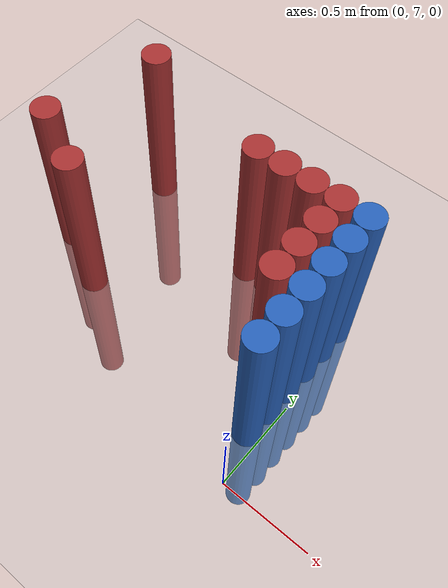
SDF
<sdf version="1.6">
 <world name="default">
  <model name="ground_plane">
   <static>1</static>
   <link name="link">
    <collision name="collision">
     <geometry><plane><normal>0 0 1</normal><size>100 100</size></plane></geometry>
     <surface><friction><ode><mu>100</mu><mu2>50</mu2></ode></friction></surface>
    </collision>
    <visual name="visual">
     <cast_shadows>0</cast_shadows>
     <geometry><plane><normal>0 0 1</normal><size>100 100</size></plane></geometry>
     <material>
      <script><uri>file://media/materials/scripts/gazebo.material</uri><name>Gazebo/Grey</name></script>
     </material>
    </visual>
   </link>
  </model>
  <model name="unit_cylinder_177">
   <static>1</static>
   <pose>-1.575000 7.575000 0.000000 0.000000 0.000000 0.000000</pose>
   <link name="link">
    <inertial>
     <mass>1</mass>
     <inertia><ixx>0.145833</ixx><ixy>0</ixy><ixz>0</ixz><iyy>0.145833</iyy><iyz>0</iyz><izz>0.125</izz></inertia>
    </inertial>
    <collision name="collision">
     <geometry><cylinder><radius>0.075000</radius><length>2</length></cylinder></geometry>
    </collision>
    <visual name="visual">
     <geometry><cylinder><radius>0.075000</radius><length>2</length></cylinder></geometry>
     <material>
      <ambient>0.648000 0.192000 0.192000 1</ambient>
      <diffuse>0.648000 0.192000 0.192000 1</diffuse>
     </material>
     <material>
      <script><name>Gazebo/Grey</name><uri>file://media/materials/scripts/gazebo.material</uri></script>
     </material>
    </visual>
   </link>
  </model>
  <model name="unit_cylinder_178">
   <static>1</static>
   <pose>-1.425000 8.175000 0.000000 0.000000 0.000000 0.000000</pose>
   <link name="link">
    <inertial>
     <mass>1</mass>
     <inertia><ixx>0.145833</ixx><ixy>0</ixy><ixz>0</ixz><iyy>0.145833</iyy><iyz>0</iyz><izz>0.125</izz></inertia>
    </inertial>
    <collision name="collision">
     <geometry><cylinder><radius>0.075000</radius><length>2</length></cylinder></geometry>
    </collision>
    <visual name="visual">
     <geometry><cylinder><radius>0.075000</radius><length>2</length></cylinder></geometry>
     <material>
      <ambient>0.648000 0.192000 0.192000 1</ambient>
      <diffuse>0.648000 0.192000 0.192000 1</diffuse>
     </material>
     <material>
      <script><name>Gazebo/Grey</name><uri>file://media/materials/scripts/gazebo.material</uri></script>
     </material>
    </visual>
   </link>
  </model>
  <model name="unit_cylinder_180">
   <static>1</static>
   <pose>-1.275000 7.425000 0.000000 0.000000 0.000000 0.000000</pose>
   <link name="link">
    <inertial>
     <mass>1</mass>
     <inertia><ixx>0.145833</ixx><ixy>0</ixy><ixz>0</ixz><iyy>0.145833</iyy><iyz>0</iyz><izz>0.125</izz></inertia>
    </inertial>
    <collision name="collision">
     <geometry><cylinder><radius>0.075000</radius><length>2</length></cylinder></geometry>
    </collision>
    <visual name="visual">
     <geometry><cylinder><radius>0.075000</radius><length>2</length></cylinder></geometry>
     <material>
      <ambient>0.648000 0.192000 0.192000 1</ambient>
      <diffuse>0.648000 0.192000 0.192000 1</diffuse>
     </material>
     <material>
      <script><name>Gazebo/Grey</name><uri>file://media/materials/scripts/gazebo.material</uri></script>
     </material>
    </visual>
   </link>
  </model>
  <model name="unit_cylinder_194">
   <static>1</static>
   <pose>-0.675000 8.025000 0.000000 0.000000 0.000000 0.000000</pose>
   <link name="link">
    <inertial>
     <mass>1</mass>
     <inertia><ixx>0.145833</ixx><ixy>0</ixy><ixz>0</ixz><iyy>0.145833</iyy><iyz>0</iyz><izz>0.125</izz></inertia>
    </inertial>
    <collision name="collision">
     <geometry><cylinder><radius>0.075000</radius><length>2</length></cylinder></geometry>
    </collision>
    <visual name="visual">
     <geometry><cylinder><radius>0.075000</radius><length>2</length></cylinder></geometry>
     <material>
      <ambient>0.648000 0.192000 0.192000 1</ambient>
      <diffuse>0.648000 0.192000 0.192000 1</diffuse>
     </material>
     <material>
      <script><name>Gazebo/Grey</name><uri>file://media/materials/scripts/gazebo.material</uri></script>
     </material>
    </visual>
   </link>
  </model>
  <model name="unit_cylinder_202">
   <static>1</static>
   <pose>-0.525000 8.025000 0.000000 0.000000 0.000000 0.000000</pose>
   <link name="link">
    <inertial>
     <mass>1</mass>
     <inertia><ixx>0.145833</ixx><ixy>0</ixy><ixz>0</ixz><iyy>0.145833</iyy><iyz>0</iyz><izz>0.125</izz></inertia>
    </inertial>
    <collision name="collision">
     <geometry><cylinder><radius>0.075000</radius><length>2</length></cylinder></geometry>
    </collision>
    <visual name="visual">
     <geometry><cylinder><radius>0.075000</radius><length>2</length></cylinder></geometry>
     <material>
      <ambient>0.648000 0.192000 0.192000 1</ambient>
      <diffuse>0.648000 0.192000 0.192000 1</diffuse>
     </material>
     <material>
      <script><name>Gazebo/Grey</name><uri>file://media/materials/scripts/gazebo.material</uri></script>
     </material>
    </visual>
   </link>
  </model>
  <model name="unit_cylinder_208">
   <static>1</static>
   <pose>-0.375000 8.025000 0.000000 0.000000 0.000000 0.000000</pose>
   <link name="link">
    <inertial>
     <mass>1</mass>
     <inertia><ixx>0.145833</ixx><ixy>0</ixy><ixz>0</ixz><iyy>0.145833</iyy><iyz>0</iyz><izz>0.125</izz></inertia>
    </inertial>
    <collision name="collision">
     <geometry><cylinder><radius>0.075000</radius><length>2</length></cylinder></geometry>
    </collision>
    <visual name="visual">
     <geometry><cylinder><radius>0.075000</radius><length>2</length></cylinder></geometry>
     <material>
      <ambient>0.648000 0.192000 0.192000 1</ambient>
      <diffuse>0.648000 0.192000 0.192000 1</diffuse>
     </material>
     <material>
      <script><name>Gazebo/Grey</name><uri>file://media/materials/scripts/gazebo.material</uri></script>
     </material>
    </visual>
   </link>
  </model>
  <model name="unit_cylinder_217">
   <static>1</static>
   <pose>-0.225000 7.575000 0.000000 0.000000 0.000000 0.000000</pose>
   <link name="link">
    <inertial>
     <mass>1</mass>
     <inertia><ixx>0.145833</ixx><ixy>0</ixy><ixz>0</ixz><iyy>0.145833</iyy><iyz>0</iyz><izz>0.125</izz></inertia>
    </inertial>
    <collision name="collision">
     <geometry><cylinder><radius>0.075000</radius><length>2</length></cylinder></geometry>
    </collision>
    <visual name="visual">
     <geometry><cylinder><radius>0.075000</radius><length>2</length></cylinder></geometry>
     <material>
      <ambient>0.648000 0.192000 0.192000 1</ambient>
      <diffuse>0.648000 0.192000 0.192000 1</diffuse>
     </material>
     <material>
      <script><name>Gazebo/Grey</name><uri>file://media/materials/scripts/gazebo.material</uri></script>
     </material>
    </visual>
   </link>
  </model>
  <model name="unit_cylinder_218">
   <static>1</static>
   <pose>-0.225000 7.725000 0.000000 0.000000 0.000000 0.000000</pose>
   <link name="link">
    <inertial>
     <mass>1</mass>
     <inertia><ixx>0.145833</ixx><ixy>0</ixy><ixz>0</ixz><iyy>0.145833</iyy><iyz>0</iyz><izz>0.125</izz></inertia>
    </inertial>
    <collision name="collision">
     <geometry><cylinder><radius>0.075000</radius><length>2</length></cylinder></geometry>
    </collision>
    <visual name="visual">
     <geometry><cylinder><radius>0.075000</radius><length>2</length></cylinder></geometry>
     <material>
      <ambient>0.648000 0.192000 0.192000 1</ambient>
      <diffuse>0.648000 0.192000 0.192000 1</diffuse>
     </material>
     <material>
      <script><name>Gazebo/Grey</name><uri>file://media/materials/scripts/gazebo.material</uri></script>
     </material>
    </visual>
   </link>
  </model>
  <model name="unit_cylinder_219">
   <static>1</static>
   <pose>-0.225000 7.875000 0.000000 0.000000 0.000000 0.000000</pose>
   <link name="link">
    <inertial>
     <mass>1</mass>
     <inertia><ixx>0.145833</ixx><ixy>0</ixy><ixz>0</ixz><iyy>0.145833</iyy><iyz>0</iyz><izz>0.125</izz></inertia>
    </inertial>
    <collision name="collision">
     <geometry><cylinder><radius>0.075000</radius><length>2</length></cylinder></geometry>
    </collision>
    <visual name="visual">
     <geometry><cylinder><radius>0.075000</radius><length>2</length></cylinder></geometry>
     <material>
      <ambient>0.648000 0.192000 0.192000 1</ambient>
      <diffuse>0.648000 0.192000 0.192000 1</diffuse>
     </material>
     <material>
      <script><name>Gazebo/Grey</name><uri>file://media/materials/scripts/gazebo.material</uri></script>
     </material>
    </visual>
   </link>
  </model>
  <model name="unit_cylinder_220">
   <static>1</static>
   <pose>-0.225000 8.025000 0.000000 0.000000 0.000000 0.000000</pose>
   <link name="link">
    <inertial>
     <mass>1</mass>
     <inertia><ixx>0.145833</ixx><ixy>0</ixy><ixz>0</ixz><iyy>0.145833</iyy><iyz>0</iyz><izz>0.125</izz></inertia>
    </inertial>
    <collision name="collision">
     <geometry><cylinder><radius>0.075000</radius><length>2</length></cylinder></geometry>
    </collision>
    <visual name="visual">
     <geometry><cylinder><radius>0.075000</radius><length>2</length></cylinder></geometry>
     <material>
      <ambient>0.648000 0.192000 0.192000 1</ambient>
      <diffuse>0.648000 0.192000 0.192000 1</diffuse>
     </material>
     <material>
      <script><name>Gazebo/Grey</name><uri>file://media/materials/scripts/gazebo.material</uri></script>
     </material>
    </visual>
   </link>
  </model>
  <model name="unit_cylinder_239">
   <static>1</static>
   <pose>-0.075000 7.275000 0.000000 0.000000 0.000000 0.000000</pose>
   <link name="link">
    <inertial>
     <mass>1</mass>
     <inertia><ixx>0.145833</ixx><ixy>0</ixy><ixz>0</ixz><iyy>0.145833</iyy><iyz>0</iyz><izz>0.125</izz></inertia>
    </inertial>
    <collision name="collision">
     <geometry><cylinder><radius>0.075000</radius><length>2</length></cylinder></geometry>
    </collision>
    <visual name="visual">
     <geometry><cylinder><radius>0.075000</radius><length>2</length></cylinder></geometry>
     <material>
      <ambient>0.152000 0.379000 0.720000 1</ambient>
      <diffuse>0.152000 0.379000 0.720000 1</diffuse>
     </material>
     <material>
      <script><name>Gazebo/Grey</name><uri>file://media/materials/scripts/gazebo.material</uri></script>
     </material>
    </visual>
   </link>
  </model>
  <model name="unit_cylinder_240">
   <static>1</static>
   <pose>-0.075000 7.425000 0.000000 0.000000 0.000000 0.000000</pose>
   <link name="link">
    <inertial>
     <mass>1</mass>
     <inertia><ixx>0.145833</ixx><ixy>0</ixy><ixz>0</ixz><iyy>0.145833</iyy><iyz>0</iyz><izz>0.125</izz></inertia>
    </inertial>
    <collision name="collision">
     <geometry><cylinder><radius>0.075000</radius><length>2</length></cylinder></geometry>
    </collision>
    <visual name="visual">
     <geometry><cylinder><radius>0.075000</radius><length>2</length></cylinder></geometry>
     <material>
      <ambient>0.152000 0.379000 0.720000 1</ambient>
      <diffuse>0.152000 0.379000 0.720000 1</diffuse>
     </material>
     <material>
      <script><name>Gazebo/Grey</name><uri>file://media/materials/scripts/gazebo.material</uri></script>
     </material>
    </visual>
   </link>
  </model>
  <model name="unit_cylinder_241">
   <static>1</static>
   <pose>-0.075000 7.575000 0.000000 0.000000 0.000000 0.000000</pose>
   <link name="link">
    <inertial>
     <mass>1</mass>
     <inertia><ixx>0.145833</ixx><ixy>0</ixy><ixz>0</ixz><iyy>0.145833</iyy><iyz>0</iyz><izz>0.125</izz></inertia>
    </inertial>
    <collision name="collision">
     <geometry><cylinder><radius>0.075000</radius><length>2</length></cylinder></geometry>
    </collision>
    <visual name="visual">
     <geometry><cylinder><radius>0.075000</radius><length>2</length></cylinder></geometry>
     <material>
      <ambient>0.152000 0.379000 0.720000 1</ambient>
      <diffuse>0.152000 0.379000 0.720000 1</diffuse>
     </material>
     <material>
      <script><name>Gazebo/Grey</name><uri>file://media/materials/scripts/gazebo.material</uri></script>
     </material>
    </visual>
   </link>
  </model>
  <model name="unit_cylinder_242">
   <static>1</static>
   <pose>-0.075000 7.725000 0.000000 0.000000 0.000000 0.000000</pose>
   <link name="link">
    <inertial>
     <mass>1</mass>
     <inertia><ixx>0.145833</ixx><ixy>0</ixy><ixz>0</ixz><iyy>0.145833</iyy><iyz>0</iyz><izz>0.125</izz></inertia>
    </inertial>
    <collision name="collision">
     <geometry><cylinder><radius>0.075000</radius><length>2</length></cylinder></geometry>
    </collision>
    <visual name="visual">
     <geometry><cylinder><radius>0.075000</radius><length>2</length></cylinder></geometry>
     <material>
      <ambient>0.152000 0.379000 0.720000 1</ambient>
      <diffuse>0.152000 0.379000 0.720000 1</diffuse>
     </material>
     <material>
      <script><name>Gazebo/Grey</name><uri>file://media/materials/scripts/gazebo.material</uri></script>
     </material>
    </visual>
   </link>
  </model>
  <model name="unit_cylinder_243">
   <static>1</static>
   <pose>-0.075000 7.875000 0.000000 0.000000 0.000000 0.000000</pose>
   <link name="link">
    <inertial>
     <mass>1</mass>
     <inertia><ixx>0.145833</ixx><ixy>0</ixy><ixz>0</ixz><iyy>0.145833</iyy><iyz>0</iyz><izz>0.125</izz></inertia>
    </inertial>
    <collision name="collision">
     <geometry><cylinder><radius>0.075000</radius><length>2</length></cylinder></geometry>
    </collision>
    <visual name="visual">
     <geometry><cylinder><radius>0.075000</radius><length>2</length></cylinder></geometry>
     <material>
      <ambient>0.152000 0.379000 0.720000 1</ambient>
      <diffuse>0.152000 0.379000 0.720000 1</diffuse>
     </material>
     <material>
      <script><name>Gazebo/Grey</name><uri>file://media/materials/scripts/gazebo.material</uri></script>
     </material>
    </visual>
   </link>
  </model>
  <model name="unit_cylinder_244">
   <static>1</static>
   <pose>-0.075000 8.025000 0.000000 0.000000 0.000000 0.000000</pose>
   <link name="link">
    <inertial>
     <mass>1</mass>
     <inertia><ixx>0.145833</ixx><ixy>0</ixy><ixz>0</ixz><iyy>0.145833</iyy><iyz>0</iyz><izz>0.125</izz></inertia>
    </inertial>
    <collision name="collision">
     <geometry><cylinder><radius>0.075000</radius><length>2</length></cylinder></geometry>
    </collision>
    <visual name="visual">
     <geometry><cylinder><radius>0.075000</radius><length>2</length></cylinder></geometry>
     <material>
      <ambient>0.152000 0.379000 0.720000 1</ambient>
      <diffuse>0.152000 0.379000 0.720000 1</diffuse>
     </material>
     <material>
      <script><name>Gazebo/Grey</name><uri>file://media/materials/scripts/gazebo.material</uri></script>
     </material>
    </visual>
   </link>
  </model>
 </world>
</sdf>
